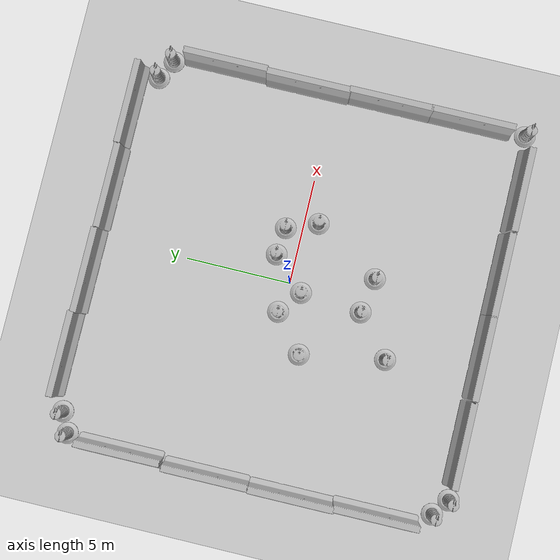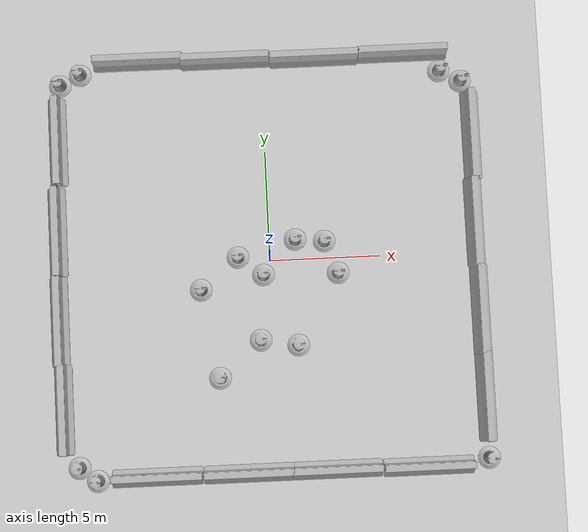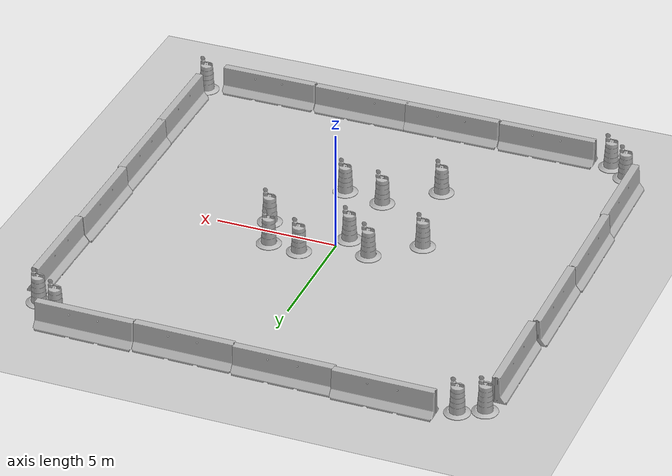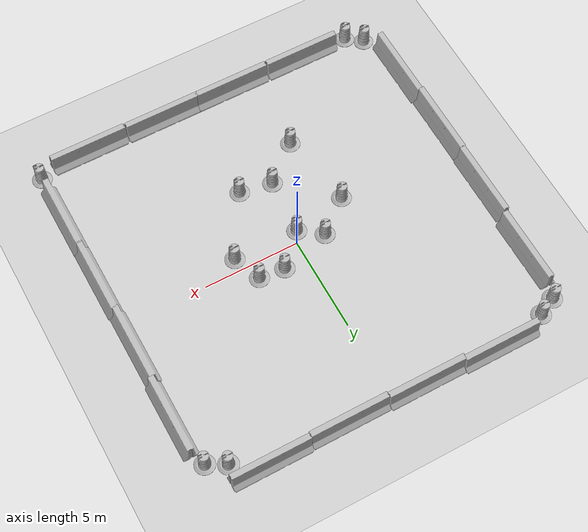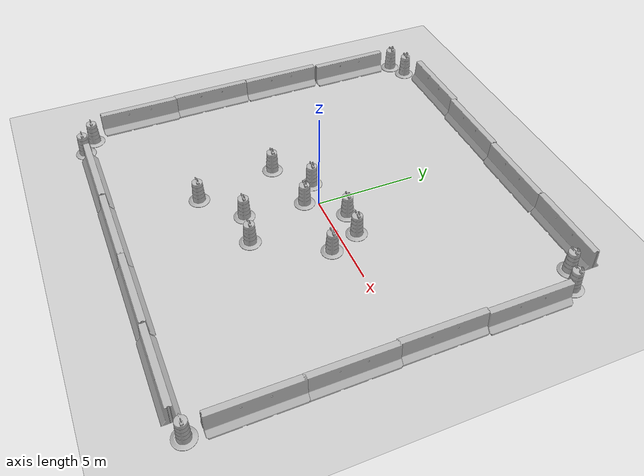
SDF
<sdf version="1.6">
 <world name="default">
  <model name="ground_plane">
   <static>1</static>
   <link name="link">
    <collision name="collision">
     <geometry><plane><normal>0 0 1</normal><size>1000 1000</size></plane></geometry>
     <surface><friction><ode><mu>100</mu><mu2>50</mu2></ode></friction></surface>
    </collision>
    <visual name="visual">
     <cast_shadows>0</cast_shadows>
     <geometry><plane><normal>0 0 1</normal><size>1000 1000</size></plane></geometry>
     <material>
      <script><uri>file://media/materials/scripts/gazebo2.material</uri><name>MyGroundPlane/Image</name></script>
     </material>
    </visual>
   </link>
  </model>
  <light name="sun" type="directional">
   <pose>0 0 10 0 -0 0</pose>
   <diffuse>0.8 0.8 0.8 1</diffuse>
   <specular>0.1 0.1 0.1 1</specular>
   <attenuation>
    <range>1000</range>
    <constant>0.9</constant>
    <linear>0.01</linear>
    <quadratic>0.001</quadratic>
   </attenuation>
   <direction>-0.5 0.5 -1</direction>
  </light>
  <model name="jersey_barrier">
   <static>1</static>
   <link name="link">
    <visual name="visual">
     <geometry>
      <mesh><uri>model://jersey_barrier/meshes/jersey_barrier.dae</uri><scale>1 1 1</scale></mesh>
     </geometry>
    </visual>
    <collision name="upright">
     <pose>0 0 0.5715 0 -0 0</pose>
     <geometry><box><size>4.06542 0.3063 1.143</size></box></geometry>
    </collision>
    <collision name="base">
     <pose>0 0 0.032258 0 -0 0</pose>
     <geometry><box><size>4.06542 0.8107 0.064516</size></box></geometry>
    </collision>
    <collision name="base2">
     <pose>0 0 0.1 0 -0 0</pose>
     <geometry><box><size>4.06542 0.65 0.1</size></box></geometry>
    </collision>
    <collision name="base3">
     <pose>0 0 0.2 0 -0 0</pose>
     <geometry><box><size>4.06542 0.5 0.1</size></box></geometry>
    </collision>
    <collision name="left-angle">
     <pose>0 -0.224 0.2401 0.9 -0 0</pose>
     <geometry><box><size>4.06542 0.5 0.064516</size></box></geometry>
    </collision>
    <collision name="right-angle">
     <pose>0 0.224 0.2401 -0.9 0 0</pose>
     <geometry><box><size>4.06542 0.5 0.064516</size></box></geometry>
    </collision>
   </link>
   <pose>-5.65677 9.4608 0 0 -0 0</pose>
  </model>
  <model name="jersey_barrier_clone">
   <static>1</static>
   <link name="link">
    <visual name="visual">
     <geometry>
      <mesh><uri>model://jersey_barrier/meshes/jersey_barrier.dae</uri><scale>1 1 1</scale></mesh>
     </geometry>
    </visual>
    <collision name="upright">
     <pose>0 0 0.5715 0 -0 0</pose>
     <geometry><box><size>4.06542 0.3063 1.143</size></box></geometry>
    </collision>
    <collision name="base">
     <pose>0 0 0.032258 0 -0 0</pose>
     <geometry><box><size>4.06542 0.8107 0.064516</size></box></geometry>
    </collision>
    <collision name="base2">
     <pose>0 0 0.1 0 -0 0</pose>
     <geometry><box><size>4.06542 0.65 0.1</size></box></geometry>
    </collision>
    <collision name="base3">
     <pose>0 0 0.2 0 -0 0</pose>
     <geometry><box><size>4.06542 0.5 0.1</size></box></geometry>
    </collision>
    <collision name="left-angle">
     <pose>0 -0.224 0.2401 0.9 -0 0</pose>
     <geometry><box><size>4.06542 0.5 0.064516</size></box></geometry>
    </collision>
    <collision name="right-angle">
     <pose>0 0.224 0.2401 -0.9 0 0</pose>
     <geometry><box><size>4.06542 0.5 0.064516</size></box></geometry>
    </collision>
   </link>
   <pose>-1.65987 9.36075 0 0 -0 0</pose>
  </model>
  <model name="jersey_barrier_clone_0">
   <static>1</static>
   <link name="link">
    <visual name="visual">
     <geometry>
      <mesh><uri>model://jersey_barrier/meshes/jersey_barrier.dae</uri><scale>1 1 1</scale></mesh>
     </geometry>
    </visual>
    <collision name="upright">
     <pose>0 0 0.5715 0 -0 0</pose>
     <geometry><box><size>4.06542 0.3063 1.143</size></box></geometry>
    </collision>
    <collision name="base">
     <pose>0 0 0.032258 0 -0 0</pose>
     <geometry><box><size>4.06542 0.8107 0.064516</size></box></geometry>
    </collision>
    <collision name="base2">
     <pose>0 0 0.1 0 -0 0</pose>
     <geometry><box><size>4.06542 0.65 0.1</size></box></geometry>
    </collision>
    <collision name="base3">
     <pose>0 0 0.2 0 -0 0</pose>
     <geometry><box><size>4.06542 0.5 0.1</size></box></geometry>
    </collision>
    <collision name="left-angle">
     <pose>0 -0.224 0.2401 0.9 -0 0</pose>
     <geometry><box><size>4.06542 0.5 0.064516</size></box></geometry>
    </collision>
    <collision name="right-angle">
     <pose>0 0.224 0.2401 -0.9 0 0</pose>
     <geometry><box><size>4.06542 0.5 0.064516</size></box></geometry>
    </collision>
   </link>
   <pose>2.39773 9.29085 0 0 -0 0</pose>
  </model>
  <model name="jersey_barrier_clone_1">
   <static>1</static>
   <link name="link">
    <visual name="visual">
     <geometry>
      <mesh><uri>model://jersey_barrier/meshes/jersey_barrier.dae</uri><scale>1 1 1</scale></mesh>
     </geometry>
    </visual>
    <collision name="upright">
     <pose>0 0 0.5715 0 -0 0</pose>
     <geometry><box><size>4.06542 0.3063 1.143</size></box></geometry>
    </collision>
    <collision name="base">
     <pose>0 0 0.032258 0 -0 0</pose>
     <geometry><box><size>4.06542 0.8107 0.064516</size></box></geometry>
    </collision>
    <collision name="base2">
     <pose>0 0 0.1 0 -0 0</pose>
     <geometry><box><size>4.06542 0.65 0.1</size></box></geometry>
    </collision>
    <collision name="base3">
     <pose>0 0 0.2 0 -0 0</pose>
     <geometry><box><size>4.06542 0.5 0.1</size></box></geometry>
    </collision>
    <collision name="left-angle">
     <pose>0 -0.224 0.2401 0.9 -0 0</pose>
     <geometry><box><size>4.06542 0.5 0.064516</size></box></geometry>
    </collision>
    <collision name="right-angle">
     <pose>0 0.224 0.2401 -0.9 0 0</pose>
     <geometry><box><size>4.06542 0.5 0.064516</size></box></geometry>
    </collision>
   </link>
   <pose>6.45464 9.33993 0 0 -0 0</pose>
  </model>
  <model name="jersey_barrier_clone_3">
   <static>1</static>
   <link name="link">
    <visual name="visual">
     <geometry>
      <mesh><uri>model://jersey_barrier/meshes/jersey_barrier.dae</uri><scale>1 1 1</scale></mesh>
     </geometry>
    </visual>
    <collision name="upright">
     <pose>0 0 0.5715 0 -0 0</pose>
     <geometry><box><size>4.06542 0.3063 1.143</size></box></geometry>
    </collision>
    <collision name="base">
     <pose>0 0 0.032258 0 -0 0</pose>
     <geometry><box><size>4.06542 0.8107 0.064516</size></box></geometry>
    </collision>
    <collision name="base2">
     <pose>0 0 0.1 0 -0 0</pose>
     <geometry><box><size>4.06542 0.65 0.1</size></box></geometry>
    </collision>
    <collision name="base3">
     <pose>0 0 0.2 0 -0 0</pose>
     <geometry><box><size>4.06542 0.5 0.1</size></box></geometry>
    </collision>
    <collision name="left-angle">
     <pose>0 -0.224 0.2401 0.9 -0 0</pose>
     <geometry><box><size>4.06542 0.5 0.064516</size></box></geometry>
    </collision>
    <collision name="right-angle">
     <pose>0 0.224 0.2401 -0.9 0 0</pose>
     <geometry><box><size>4.06542 0.5 0.064516</size></box></geometry>
    </collision>
   </link>
   <pose>9.44656 5.35522 0 0 0 -1.56865</pose>
  </model>
  <model name="jersey_barrier_clone_3_clone">
   <static>1</static>
   <link name="link">
    <visual name="visual">
     <geometry>
      <mesh><uri>model://jersey_barrier/meshes/jersey_barrier.dae</uri><scale>1 1 1</scale></mesh>
     </geometry>
    </visual>
    <collision name="upright">
     <pose>0 0 0.5715 0 -0 0</pose>
     <geometry><box><size>4.06542 0.3063 1.143</size></box></geometry>
    </collision>
    <collision name="base">
     <pose>0 0 0.032258 0 -0 0</pose>
     <geometry><box><size>4.06542 0.8107 0.064516</size></box></geometry>
    </collision>
    <collision name="base2">
     <pose>0 0 0.1 0 -0 0</pose>
     <geometry><box><size>4.06542 0.65 0.1</size></box></geometry>
    </collision>
    <collision name="base3">
     <pose>0 0 0.2 0 -0 0</pose>
     <geometry><box><size>4.06542 0.5 0.1</size></box></geometry>
    </collision>
    <collision name="left-angle">
     <pose>0 -0.224 0.2401 0.9 -0 0</pose>
     <geometry><box><size>4.06542 0.5 0.064516</size></box></geometry>
    </collision>
    <collision name="right-angle">
     <pose>0 0.224 0.2401 -0.9 0 0</pose>
     <geometry><box><size>4.06542 0.5 0.064516</size></box></geometry>
    </collision>
   </link>
   <pose>9.3727 1.33119 0 0 0 -1.56865</pose>
  </model>
  <model name="jersey_barrier_clone_3_clone_0">
   <static>1</static>
   <link name="link">
    <visual name="visual">
     <geometry>
      <mesh><uri>model://jersey_barrier/meshes/jersey_barrier.dae</uri><scale>1 1 1</scale></mesh>
     </geometry>
    </visual>
    <collision name="upright">
     <pose>0 0 0.5715 0 -0 0</pose>
     <geometry><box><size>4.06542 0.3063 1.143</size></box></geometry>
    </collision>
    <collision name="base">
     <pose>0 0 0.032258 0 -0 0</pose>
     <geometry><box><size>4.06542 0.8107 0.064516</size></box></geometry>
    </collision>
    <collision name="base2">
     <pose>0 0 0.1 0 -0 0</pose>
     <geometry><box><size>4.06542 0.65 0.1</size></box></geometry>
    </collision>
    <collision name="base3">
     <pose>0 0 0.2 0 -0 0</pose>
     <geometry><box><size>4.06542 0.5 0.1</size></box></geometry>
    </collision>
    <collision name="left-angle">
     <pose>0 -0.224 0.2401 0.9 -0 0</pose>
     <geometry><box><size>4.06542 0.5 0.064516</size></box></geometry>
    </collision>
    <collision name="right-angle">
     <pose>0 0.224 0.2401 -0.9 0 0</pose>
     <geometry><box><size>4.06542 0.5 0.064516</size></box></geometry>
    </collision>
   </link>
   <pose>9.4315 -2.6268 0 0 0 -1.56865</pose>
  </model>
  <model name="jersey_barrier_clone_3_clone_1">
   <static>1</static>
   <link name="link">
    <visual name="visual">
     <geometry>
      <mesh><uri>model://jersey_barrier/meshes/jersey_barrier.dae</uri><scale>1 1 1</scale></mesh>
     </geometry>
    </visual>
    <collision name="upright">
     <pose>0 0 0.5715 0 -0 0</pose>
     <geometry><box><size>4.06542 0.3063 1.143</size></box></geometry>
    </collision>
    <collision name="base">
     <pose>0 0 0.032258 0 -0 0</pose>
     <geometry><box><size>4.06542 0.8107 0.064516</size></box></geometry>
    </collision>
    <collision name="base2">
     <pose>0 0 0.1 0 -0 0</pose>
     <geometry><box><size>4.06542 0.65 0.1</size></box></geometry>
    </collision>
    <collision name="base3">
     <pose>0 0 0.2 0 -0 0</pose>
     <geometry><box><size>4.06542 0.5 0.1</size></box></geometry>
    </collision>
    <collision name="left-angle">
     <pose>0 -0.224 0.2401 0.9 -0 0</pose>
     <geometry><box><size>4.06542 0.5 0.064516</size></box></geometry>
    </collision>
    <collision name="right-angle">
     <pose>0 0.224 0.2401 -0.9 0 0</pose>
     <geometry><box><size>4.06542 0.5 0.064516</size></box></geometry>
    </collision>
   </link>
   <pose>9.44969 -6.53485 0 0 0 -1.56865</pose>
  </model>
  <model name="jersey_barrier_clone_2_clone">
   <static>1</static>
   <link name="link">
    <visual name="visual">
     <geometry>
      <mesh><uri>model://jersey_barrier/meshes/jersey_barrier.dae</uri><scale>1 1 1</scale></mesh>
     </geometry>
    </visual>
    <collision name="upright">
     <pose>0 0 0.5715 0 -0 0</pose>
     <geometry><box><size>4.06542 0.3063 1.143</size></box></geometry>
    </collision>
    <collision name="base">
     <pose>0 0 0.032258 0 -0 0</pose>
     <geometry><box><size>4.06542 0.8107 0.064516</size></box></geometry>
    </collision>
    <collision name="base2">
     <pose>0 0 0.1 0 -0 0</pose>
     <geometry><box><size>4.06542 0.65 0.1</size></box></geometry>
    </collision>
    <collision name="base3">
     <pose>0 0 0.2 0 -0 0</pose>
     <geometry><box><size>4.06542 0.5 0.1</size></box></geometry>
    </collision>
    <collision name="left-angle">
     <pose>0 -0.224 0.2401 0.9 -0 0</pose>
     <geometry><box><size>4.06542 0.5 0.064516</size></box></geometry>
    </collision>
    <collision name="right-angle">
     <pose>0 0.224 0.2401 -0.9 0 0</pose>
     <geometry><box><size>4.06542 0.5 0.064516</size></box></geometry>
    </collision>
   </link>
   <pose>6.70657 -9.54347 0 0 -0 0</pose>
  </model>
  <model name="jersey_barrier_clone_2_clone_0">
   <static>1</static>
   <link name="link">
    <visual name="visual">
     <geometry>
      <mesh><uri>model://jersey_barrier/meshes/jersey_barrier.dae</uri><scale>1 1 1</scale></mesh>
     </geometry>
    </visual>
    <collision name="upright">
     <pose>0 0 0.5715 0 -0 0</pose>
     <geometry><box><size>4.06542 0.3063 1.143</size></box></geometry>
    </collision>
    <collision name="base">
     <pose>0 0 0.032258 0 -0 0</pose>
     <geometry><box><size>4.06542 0.8107 0.064516</size></box></geometry>
    </collision>
    <collision name="base2">
     <pose>0 0 0.1 0 -0 0</pose>
     <geometry><box><size>4.06542 0.65 0.1</size></box></geometry>
    </collision>
    <collision name="base3">
     <pose>0 0 0.2 0 -0 0</pose>
     <geometry><box><size>4.06542 0.5 0.1</size></box></geometry>
    </collision>
    <collision name="left-angle">
     <pose>0 -0.224 0.2401 0.9 -0 0</pose>
     <geometry><box><size>4.06542 0.5 0.064516</size></box></geometry>
    </collision>
    <collision name="right-angle">
     <pose>0 0.224 0.2401 -0.9 0 0</pose>
     <geometry><box><size>4.06542 0.5 0.064516</size></box></geometry>
    </collision>
   </link>
   <pose>2.59616 -9.50928 0 0 -0 0</pose>
  </model>
  <model name="jersey_barrier_clone_2_clone_1">
   <static>1</static>
   <link name="link">
    <visual name="visual">
     <geometry>
      <mesh><uri>model://jersey_barrier/meshes/jersey_barrier.dae</uri><scale>1 1 1</scale></mesh>
     </geometry>
    </visual>
    <collision name="upright">
     <pose>0 0 0.5715 0 -0 0</pose>
     <geometry><box><size>4.06542 0.3063 1.143</size></box></geometry>
    </collision>
    <collision name="base">
     <pose>0 0 0.032258 0 -0 0</pose>
     <geometry><box><size>4.06542 0.8107 0.064516</size></box></geometry>
    </collision>
    <collision name="base2">
     <pose>0 0 0.1 0 -0 0</pose>
     <geometry><box><size>4.06542 0.65 0.1</size></box></geometry>
    </collision>
    <collision name="base3">
     <pose>0 0 0.2 0 -0 0</pose>
     <geometry><box><size>4.06542 0.5 0.1</size></box></geometry>
    </collision>
    <collision name="left-angle">
     <pose>0 -0.224 0.2401 0.9 -0 0</pose>
     <geometry><box><size>4.06542 0.5 0.064516</size></box></geometry>
    </collision>
    <collision name="right-angle">
     <pose>0 0.224 0.2401 -0.9 0 0</pose>
     <geometry><box><size>4.06542 0.5 0.064516</size></box></geometry>
    </collision>
   </link>
   <pose>-1.33414 -9.50852 0 0 -0 0</pose>
  </model>
  <model name="jersey_barrier_clone_2_clone_2">
   <static>1</static>
   <link name="link">
    <visual name="visual">
     <geometry>
      <mesh><uri>model://jersey_barrier/meshes/jersey_barrier.dae</uri><scale>1 1 1</scale></mesh>
     </geometry>
    </visual>
    <collision name="upright">
     <pose>0 0 0.5715 0 -0 0</pose>
     <geometry><box><size>4.06542 0.3063 1.143</size></box></geometry>
    </collision>
    <collision name="base">
     <pose>0 0 0.032258 0 -0 0</pose>
     <geometry><box><size>4.06542 0.8107 0.064516</size></box></geometry>
    </collision>
    <collision name="base2">
     <pose>0 0 0.1 0 -0 0</pose>
     <geometry><box><size>4.06542 0.65 0.1</size></box></geometry>
    </collision>
    <collision name="base3">
     <pose>0 0 0.2 0 -0 0</pose>
     <geometry><box><size>4.06542 0.5 0.1</size></box></geometry>
    </collision>
    <collision name="left-angle">
     <pose>0 -0.224 0.2401 0.9 -0 0</pose>
     <geometry><box><size>4.06542 0.5 0.064516</size></box></geometry>
    </collision>
    <collision name="right-angle">
     <pose>0 0.224 0.2401 -0.9 0 0</pose>
     <geometry><box><size>4.06542 0.5 0.064516</size></box></geometry>
    </collision>
   </link>
   <pose>-5.44605 -9.49634 0 0 -0 0</pose>
  </model>
  <model name="jersey_barrier_clone_3_clone_1_clone">
   <static>1</static>
   <link name="link">
    <visual name="visual">
     <geometry>
      <mesh><uri>model://jersey_barrier/meshes/jersey_barrier.dae</uri><scale>1 1 1</scale></mesh>
     </geometry>
    </visual>
    <collision name="upright">
     <pose>0 0 0.5715 0 -0 0</pose>
     <geometry><box><size>4.06542 0.3063 1.143</size></box></geometry>
    </collision>
    <collision name="base">
     <pose>0 0 0.032258 0 -0 0</pose>
     <geometry><box><size>4.06542 0.8107 0.064516</size></box></geometry>
    </collision>
    <collision name="base2">
     <pose>0 0 0.1 0 -0 0</pose>
     <geometry><box><size>4.06542 0.65 0.1</size></box></geometry>
    </collision>
    <collision name="base3">
     <pose>0 0 0.2 0 -0 0</pose>
     <geometry><box><size>4.06542 0.5 0.1</size></box></geometry>
    </collision>
    <collision name="left-angle">
     <pose>0 -0.224 0.2401 0.9 -0 0</pose>
     <geometry><box><size>4.06542 0.5 0.064516</size></box></geometry>
    </collision>
    <collision name="right-angle">
     <pose>0 0.224 0.2401 -0.9 0 0</pose>
     <geometry><box><size>4.06542 0.5 0.064516</size></box></geometry>
    </collision>
   </link>
   <pose>-9.54289 -6.33149 0 0 0 -1.56865</pose>
  </model>
  <model name="jersey_barrier_clone_3_clone_1_clone_0">
   <static>1</static>
   <link name="link">
    <visual name="visual">
     <geometry>
      <mesh><uri>model://jersey_barrier/meshes/jersey_barrier.dae</uri><scale>1 1 1</scale></mesh>
     </geometry>
    </visual>
    <collision name="upright">
     <pose>0 0 0.5715 0 -0 0</pose>
     <geometry><box><size>4.06542 0.3063 1.143</size></box></geometry>
    </collision>
    <collision name="base">
     <pose>0 0 0.032258 0 -0 0</pose>
     <geometry><box><size>4.06542 0.8107 0.064516</size></box></geometry>
    </collision>
    <collision name="base2">
     <pose>0 0 0.1 0 -0 0</pose>
     <geometry><box><size>4.06542 0.65 0.1</size></box></geometry>
    </collision>
    <collision name="base3">
     <pose>0 0 0.2 0 -0 0</pose>
     <geometry><box><size>4.06542 0.5 0.1</size></box></geometry>
    </collision>
    <collision name="left-angle">
     <pose>0 -0.224 0.2401 0.9 -0 0</pose>
     <geometry><box><size>4.06542 0.5 0.064516</size></box></geometry>
    </collision>
    <collision name="right-angle">
     <pose>0 0.224 0.2401 -0.9 0 0</pose>
     <geometry><box><size>4.06542 0.5 0.064516</size></box></geometry>
    </collision>
   </link>
   <pose>-9.6221 -2.35336 0 0 0 -1.56865</pose>
  </model>
  <model name="jersey_barrier_clone_3_clone_1_clone_1">
   <static>1</static>
   <link name="link">
    <visual name="visual">
     <geometry>
      <mesh><uri>model://jersey_barrier/meshes/jersey_barrier.dae</uri><scale>1 1 1</scale></mesh>
     </geometry>
    </visual>
    <collision name="upright">
     <pose>0 0 0.5715 0 -0 0</pose>
     <geometry><box><size>4.06542 0.3063 1.143</size></box></geometry>
    </collision>
    <collision name="base">
     <pose>0 0 0.032258 0 -0 0</pose>
     <geometry><box><size>4.06542 0.8107 0.064516</size></box></geometry>
    </collision>
    <collision name="base2">
     <pose>0 0 0.1 0 -0 0</pose>
     <geometry><box><size>4.06542 0.65 0.1</size></box></geometry>
    </collision>
    <collision name="base3">
     <pose>0 0 0.2 0 -0 0</pose>
     <geometry><box><size>4.06542 0.5 0.1</size></box></geometry>
    </collision>
    <collision name="left-angle">
     <pose>0 -0.224 0.2401 0.9 -0 0</pose>
     <geometry><box><size>4.06542 0.5 0.064516</size></box></geometry>
    </collision>
    <collision name="right-angle">
     <pose>0 0.224 0.2401 -0.9 0 0</pose>
     <geometry><box><size>4.06542 0.5 0.064516</size></box></geometry>
    </collision>
   </link>
   <pose>-9.58952 1.69745 0 0 0 -1.56865</pose>
  </model>
  <model name="jersey_barrier_clone_3_clone_1_clone_2">
   <static>1</static>
   <link name="link">
    <visual name="visual">
     <geometry>
      <mesh><uri>model://jersey_barrier/meshes/jersey_barrier.dae</uri><scale>1 1 1</scale></mesh>
     </geometry>
    </visual>
    <collision name="upright">
     <pose>0 0 0.5715 0 -0 0</pose>
     <geometry><box><size>4.06542 0.3063 1.143</size></box></geometry>
    </collision>
    <collision name="base">
     <pose>0 0 0.032258 0 -0 0</pose>
     <geometry><box><size>4.06542 0.8107 0.064516</size></box></geometry>
    </collision>
    <collision name="base2">
     <pose>0 0 0.1 0 -0 0</pose>
     <geometry><box><size>4.06542 0.65 0.1</size></box></geometry>
    </collision>
    <collision name="base3">
     <pose>0 0 0.2 0 -0 0</pose>
     <geometry><box><size>4.06542 0.5 0.1</size></box></geometry>
    </collision>
    <collision name="left-angle">
     <pose>0 -0.224 0.2401 0.9 -0 0</pose>
     <geometry><box><size>4.06542 0.5 0.064516</size></box></geometry>
    </collision>
    <collision name="right-angle">
     <pose>0 0.224 0.2401 -0.9 0 0</pose>
     <geometry><box><size>4.06542 0.5 0.064516</size></box></geometry>
    </collision>
   </link>
   <pose>-9.44715 5.83721 0 0 0 -1.56865</pose>
  </model>
  <model name="Construction Barrel">
   <link name="link">
    <inertial>
     <pose>0 0 0.4 0 -0 0</pose>
     <mass>500</mass>
     <inertia><ixx>51.2096</ixx><iyy>51.2096</iyy><izz>25</izz><ixy>0</ixy><ixz>0</ixz><iyz>0</iyz></inertia>
    </inertial>
    <collision name="collision">
     <geometry>
      <mesh><uri>model://construction_barrel/meshes/construction_barrel.dae</uri><scale>1 1 1</scale></mesh>
     </geometry>
    </collision>
    <visual name="visual">
     <geometry>
      <mesh><uri>model://construction_barrel/meshes/construction_barrel.dae</uri><scale>1 1 1</scale></mesh>
     </geometry>
    </visual>
   </link>
   <pose>9.07442 7.91054 -4e-06 -5e-06 -7e-06 -8.1e-05</pose>
  </model>
  <model name="Construction Barrel_0">
   <link name="link">
    <inertial>
     <pose>0 0 0.4 0 -0 0</pose>
     <mass>500</mass>
     <inertia><ixx>51.2096</ixx><iyy>51.2096</iyy><izz>25</izz><ixy>0</ixy><ixz>0</ixz><iyz>0</iyz></inertia>
    </inertial>
    <collision name="collision">
     <geometry>
      <mesh><uri>model://construction_barrel/meshes/construction_barrel.dae</uri><scale>1 1 1</scale></mesh>
     </geometry>
    </collision>
    <visual name="visual">
     <geometry>
      <mesh><uri>model://construction_barrel/meshes/construction_barrel.dae</uri><scale>1 1 1</scale></mesh>
     </geometry>
    </visual>
   </link>
   <pose>8.12825 8.41633 0 0 0 -3.8e-05</pose>
  </model>
  <model name="Construction Barrel_1">
   <link name="link">
    <inertial>
     <pose>0 0 0.4 0 -0 0</pose>
     <mass>500</mass>
     <inertia><ixx>51.2096</ixx><iyy>51.2096</iyy><izz>25</izz><ixy>0</ixy><ixz>0</ixz><iyz>0</iyz></inertia>
    </inertial>
    <collision name="collision">
     <geometry>
      <mesh><uri>model://construction_barrel/meshes/construction_barrel.dae</uri><scale>1 1 1</scale></mesh>
     </geometry>
    </collision>
    <visual name="visual">
     <geometry>
      <mesh><uri>model://construction_barrel/meshes/construction_barrel.dae</uri><scale>1 1 1</scale></mesh>
     </geometry>
    </visual>
   </link>
   <pose>-9.27271 8.48386 -1e-06 1e-06 -9e-06 -2.6e-05</pose>
  </model>
  <model name="Construction Barrel_2">
   <link name="link">
    <inertial>
     <pose>0 0 0.4 0 -0 0</pose>
     <mass>500</mass>
     <inertia><ixx>51.2096</ixx><iyy>51.2096</iyy><izz>25</izz><ixy>0</ixy><ixz>0</ixz><iyz>0</iyz></inertia>
    </inertial>
    <collision name="collision">
     <geometry>
      <mesh><uri>model://construction_barrel/meshes/construction_barrel.dae</uri><scale>1 1 1</scale></mesh>
     </geometry>
    </collision>
    <visual name="visual">
     <geometry>
      <mesh><uri>model://construction_barrel/meshes/construction_barrel.dae</uri><scale>1 1 1</scale></mesh>
     </geometry>
    </visual>
   </link>
   <pose>-8.34368 8.9385 -1e-06 1e-06 -9e-06 -3.3e-05</pose>
  </model>
  <model name="Construction Barrel_3">
   <link name="link">
    <inertial>
     <pose>0 0 0.4 0 -0 0</pose>
     <mass>500</mass>
     <inertia><ixx>51.2096</ixx><iyy>51.2096</iyy><izz>25</izz><ixy>0</ixy><ixz>0</ixz><iyz>0</iyz></inertia>
    </inertial>
    <collision name="collision">
     <geometry>
      <mesh><uri>model://construction_barrel/meshes/construction_barrel.dae</uri><scale>1 1 1</scale></mesh>
     </geometry>
    </collision>
    <visual name="visual">
     <geometry>
      <mesh><uri>model://construction_barrel/meshes/construction_barrel.dae</uri><scale>1 1 1</scale></mesh>
     </geometry>
    </visual>
   </link>
   <pose>9.45354 -9.29437 -1e-06 1e-06 -9e-06 -2.7e-05</pose>
  </model>
  <model name="Construction Barrel_4">
   <link name="link">
    <inertial>
     <pose>0 0 0.4 0 -0 0</pose>
     <mass>500</mass>
     <inertia><ixx>51.2096</ixx><iyy>51.2096</iyy><izz>25</izz><ixy>0</ixy><ixz>0</ixz><iyz>0</iyz></inertia>
    </inertial>
    <collision name="collision">
     <geometry>
      <mesh><uri>model://construction_barrel/meshes/construction_barrel.dae</uri><scale>1 1 1</scale></mesh>
     </geometry>
    </collision>
    <visual name="visual">
     <geometry>
      <mesh><uri>model://construction_barrel/meshes/construction_barrel.dae</uri><scale>1 1 1</scale></mesh>
     </geometry>
    </visual>
   </link>
   <pose>-8.1332 -9.57177 0 0 0 -0.000492</pose>
  </model>
  <model name="Construction Barrel_5">
   <link name="link">
    <inertial>
     <pose>0 0 0.4 0 -0 0</pose>
     <mass>500</mass>
     <inertia><ixx>51.2096</ixx><iyy>51.2096</iyy><izz>25</izz><ixy>0</ixy><ixz>0</ixz><iyz>0</iyz></inertia>
    </inertial>
    <collision name="collision">
     <geometry>
      <mesh><uri>model://construction_barrel/meshes/construction_barrel.dae</uri><scale>1 1 1</scale></mesh>
     </geometry>
    </collision>
    <visual name="visual">
     <geometry>
      <mesh><uri>model://construction_barrel/meshes/construction_barrel.dae</uri><scale>1 1 1</scale></mesh>
     </geometry>
    </visual>
   </link>
   <pose>-8.93853 -8.9601 -1e-06 3e-06 -2e-06 -0.000405</pose>
  </model>
  <gravity>0 0 -9.8</gravity>
  <magnetic_field>6e-06 2.3e-05 -4.2e-05</magnetic_field>
  <atmosphere type="adiabatic"/>
  <physics name="default_physics" default="0" type="ode">
   <max_step_size>0.001</max_step_size>
   <real_time_factor>1</real_time_factor>
   <real_time_update_rate>1000</real_time_update_rate>
  </physics>
  <scene><ambient>0.4 0.4 0.4 1</ambient><background>0.7 0.7 0.7 1</background><shadows>1</shadows></scene>
  <spherical_coordinates>
   <surface_model>EARTH_WGS84</surface_model>
   <latitude_deg>0</latitude_deg>
   <longitude_deg>0</longitude_deg>
   <elevation>0</elevation>
   <heading_deg>0</heading_deg>
  </spherical_coordinates>
  <model name="Construction Barrel_6">
   <static>1</static>
   <link name="link">
    <inertial>
     <pose>0 0 0.4 0 -0 0</pose>
     <mass>500</mass>
     <inertia><ixx>51.2096</ixx><iyy>51.2096</iyy><izz>25</izz><ixy>0</ixy><ixz>0</ixz><iyz>0</iyz></inertia>
    </inertial>
    <collision name="collision">
     <geometry>
      <mesh><uri>model://construction_barrel/meshes/construction_barrel.dae</uri><scale>1 1 1</scale></mesh>
     </geometry>
    </collision>
    <visual name="visual">
     <geometry>
      <mesh><uri>model://construction_barrel/meshes/construction_barrel.dae</uri><scale>1 1 1</scale></mesh>
     </geometry>
    </visual>
   </link>
   <pose>-3.18109 -1.19472 0 0 -0 0</pose>
  </model>
  <model name="Construction Barrel_7">
   <static>1</static>
   <link name="link">
    <inertial>
     <pose>0 0 0.4 0 -0 0</pose>
     <mass>500</mass>
     <inertia><ixx>51.2096</ixx><iyy>51.2096</iyy><izz>25</izz><ixy>0</ixy><ixz>0</ixz><iyz>0</iyz></inertia>
    </inertial>
    <collision name="collision">
     <geometry>
      <mesh><uri>model://construction_barrel/meshes/construction_barrel.dae</uri><scale>1 1 1</scale></mesh>
     </geometry>
    </collision>
    <visual name="visual">
     <geometry>
      <mesh><uri>model://construction_barrel/meshes/construction_barrel.dae</uri><scale>1 1 1</scale></mesh>
     </geometry>
    </visual>
   </link>
   <pose>-2.47038 -5.20929 0 0 -0 0</pose>
  </model>
  <model name="Construction Barrel_8">
   <static>1</static>
   <link name="link">
    <inertial>
     <pose>0 0 0.4 0 -0 0</pose>
     <mass>500</mass>
     <inertia><ixx>51.2096</ixx><iyy>51.2096</iyy><izz>25</izz><ixy>0</ixy><ixz>0</ixz><iyz>0</iyz></inertia>
    </inertial>
    <collision name="collision">
     <geometry>
      <mesh><uri>model://construction_barrel/meshes/construction_barrel.dae</uri><scale>1 1 1</scale></mesh>
     </geometry>
    </collision>
    <visual name="visual">
     <geometry>
      <mesh><uri>model://construction_barrel/meshes/construction_barrel.dae</uri><scale>1 1 1</scale></mesh>
     </geometry>
    </visual>
   </link>
   <pose>-0.563699 -3.57508 0 0 -0 0</pose>
  </model>
  <model name="Construction Barrel_9">
   <static>1</static>
   <link name="link">
    <inertial>
     <pose>0 0 0.4 0 -0 0</pose>
     <mass>500</mass>
     <inertia><ixx>51.2096</ixx><iyy>51.2096</iyy><izz>25</izz><ixy>0</ixy><ixz>0</ixz><iyz>0</iyz></inertia>
    </inertial>
    <collision name="collision">
     <geometry>
      <mesh><uri>model://construction_barrel/meshes/construction_barrel.dae</uri><scale>1 1 1</scale></mesh>
     </geometry>
    </collision>
    <visual name="visual">
     <geometry>
      <mesh><uri>model://construction_barrel/meshes/construction_barrel.dae</uri><scale>1 1 1</scale></mesh>
     </geometry>
    </visual>
   </link>
   <pose>1.12967 -3.87378 0 0 -0 0</pose>
  </model>
  <model name="Construction Barrel_9_clone">
   <static>1</static>
   <link name="link">
    <inertial>
     <pose>0 0 0.4 0 -0 0</pose>
     <mass>500</mass>
     <inertia><ixx>51.2096</ixx><iyy>51.2096</iyy><izz>25</izz><ixy>0</ixy><ixz>0</ixz><iyz>0</iyz></inertia>
    </inertial>
    <collision name="collision">
     <geometry>
      <mesh><uri>model://construction_barrel/meshes/construction_barrel.dae</uri><scale>1 1 1</scale></mesh>
     </geometry>
    </collision>
    <visual name="visual">
     <geometry>
      <mesh><uri>model://construction_barrel/meshes/construction_barrel.dae</uri><scale>1 1 1</scale></mesh>
     </geometry>
    </visual>
   </link>
   <pose>-1.45054 0.224807 0 0 -0 0</pose>
  </model>
  <model name="Construction Barrel_9_clone_0">
   <static>1</static>
   <link name="link">
    <inertial>
     <pose>0 0 0.4 0 -0 0</pose>
     <mass>500</mass>
     <inertia><ixx>51.2096</ixx><iyy>51.2096</iyy><izz>25</izz><ixy>0</ixy><ixz>0</ixz><iyz>0</iyz></inertia>
    </inertial>
    <collision name="collision">
     <geometry>
      <mesh><uri>model://construction_barrel/meshes/construction_barrel.dae</uri><scale>1 1 1</scale></mesh>
     </geometry>
    </collision>
    <visual name="visual">
     <geometry>
      <mesh><uri>model://construction_barrel/meshes/construction_barrel.dae</uri><scale>1 1 1</scale></mesh>
     </geometry>
    </visual>
   </link>
   <pose>1.17985 0.930435 0 0 -0 0</pose>
  </model>
  <model name="Construction Barrel_9_clone_1">
   <static>1</static>
   <link name="link">
    <inertial>
     <pose>0 0 0.4 0 -0 0</pose>
     <mass>500</mass>
     <inertia><ixx>51.2096</ixx><iyy>51.2096</iyy><izz>25</izz><ixy>0</ixy><ixz>0</ixz><iyz>0</iyz></inertia>
    </inertial>
    <collision name="collision">
     <geometry>
      <mesh><uri>model://construction_barrel/meshes/construction_barrel.dae</uri><scale>1 1 1</scale></mesh>
     </geometry>
    </collision>
    <visual name="visual">
     <geometry>
      <mesh><uri>model://construction_barrel/meshes/construction_barrel.dae</uri><scale>1 1 1</scale></mesh>
     </geometry>
    </visual>
   </link>
   <pose>3.0684 -0.671748 0 0 -0 0</pose>
  </model>
  <model name="Construction Barrel_9_clone_2">
   <static>1</static>
   <link name="link">
    <inertial>
     <pose>0 0 0.4 0 -0 0</pose>
     <mass>500</mass>
     <inertia><ixx>51.2096</ixx><iyy>51.2096</iyy><izz>25</izz><ixy>0</ixy><ixz>0</ixz><iyz>0</iyz></inertia>
    </inertial>
    <collision name="collision">
     <geometry>
      <mesh><uri>model://construction_barrel/meshes/construction_barrel.dae</uri><scale>1 1 1</scale></mesh>
     </geometry>
    </collision>
    <visual name="visual">
     <geometry>
      <mesh><uri>model://construction_barrel/meshes/construction_barrel.dae</uri><scale>1 1 1</scale></mesh>
     </geometry>
    </visual>
   </link>
   <pose>-0.326786 -0.619142 0 0 -0 0</pose>
  </model>
  <model name="Construction Barrel_9_clone_3">
   <static>1</static>
   <link name="link">
    <inertial>
     <pose>0 0 0.4 0 -0 0</pose>
     <mass>500</mass>
     <inertia><ixx>51.2096</ixx><iyy>51.2096</iyy><izz>25</izz><ixy>0</ixy><ixz>0</ixz><iyz>0</iyz></inertia>
    </inertial>
    <collision name="collision">
     <geometry>
      <mesh><uri>model://construction_barrel/meshes/construction_barrel.dae</uri><scale>1 1 1</scale></mesh>
     </geometry>
    </collision>
    <visual name="visual">
     <geometry>
      <mesh><uri>model://construction_barrel/meshes/construction_barrel.dae</uri><scale>1 1 1</scale></mesh>
     </geometry>
    </visual>
   </link>
   <pose>2.50123 0.802435 0 0 -0 0</pose>
  </model>
 </world>
</sdf>
